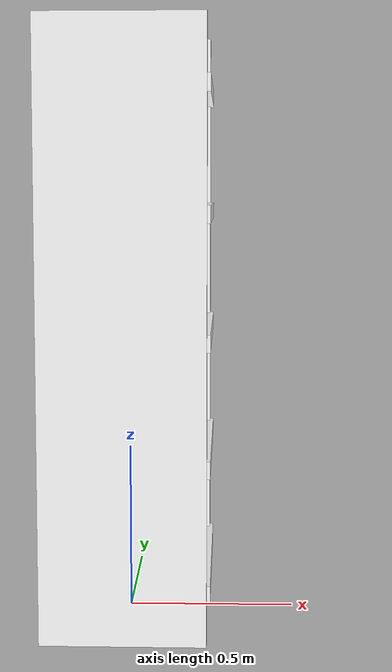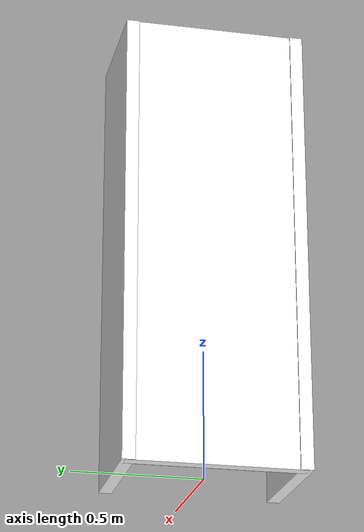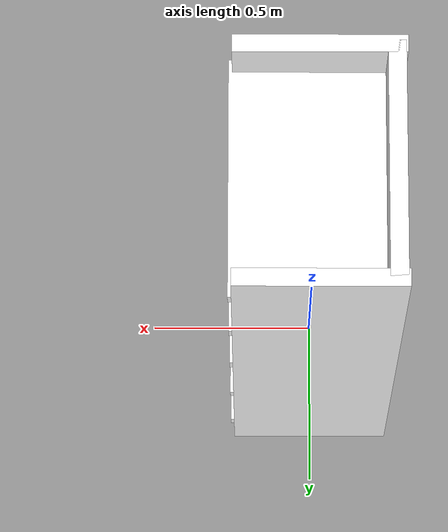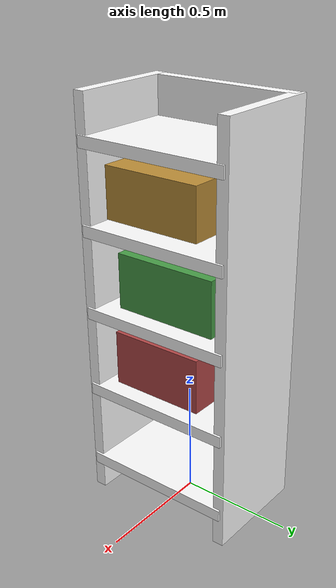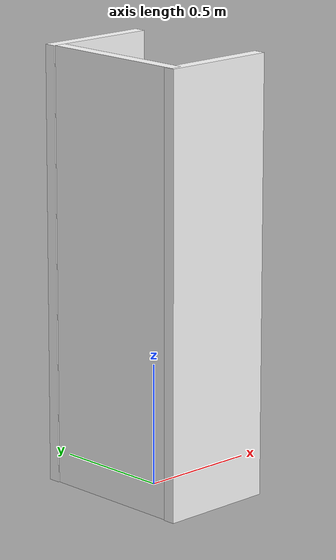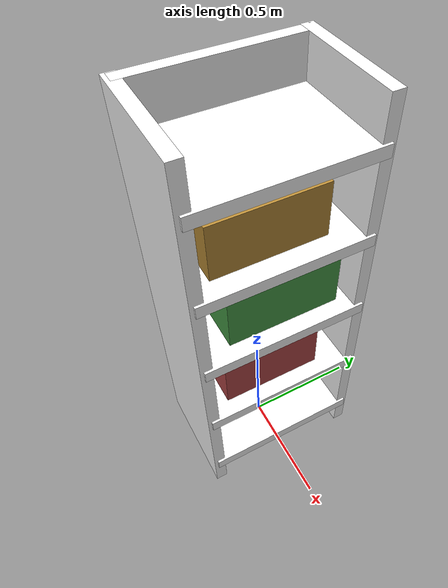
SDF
<?xml version="1.0"?>
<sdf version="1.9">
  <model name="bookshelf">
    <static>true</static>
    <link name="body">

      <collision name="left_side_collision">
        <pose>0 0.33 0.88 0 0 0</pose>
        <geometry><box><size>0.48 0.05 1.78</size></box></geometry>
      </collision>
      <collision name="right_side_collision">
        <pose>0 -0.33 0.88 0 0 0</pose>
        <geometry><box><size>0.48 0.05 1.78</size></box></geometry>
      </collision>
      <collision name="back_collision">
        <pose>-0.21 0 0.88 0 0 0</pose>
        <geometry><box><size>0.05 0.68 1.78</size></box></geometry>
      </collision>

      <collision name="bottom_shelf_collision">
        <pose>0.03 0 0.14 0 0 0</pose>
        <geometry><box><size>0.44 0.68 0.05</size></box></geometry>
      </collision>
      <collision name="mid1_shelf_collision">
        <pose>0.03 0 0.50 0 0 0</pose>
        <geometry><box><size>0.44 0.68 0.05</size></box></geometry>
      </collision>
      <collision name="mid2_shelf_collision">
        <pose>0.03 0 0.86 0 0 0</pose>
        <geometry><box><size>0.44 0.68 0.05</size></box></geometry>
      </collision>
      <collision name="mid3_shelf_collision">
        <pose>0.03 0 1.22 0 0 0</pose>
        <geometry><box><size>0.44 0.68 0.05</size></box></geometry>
      </collision>
      <collision name="top_shelf_collision">
        <pose>0.03 0 1.58 0 0 0</pose>
        <geometry><box><size>0.44 0.68 0.05</size></box></geometry>
      </collision>

      <collision name="books_2_collision">
        <pose>0.09 -0.03 0.66 0 0 0</pose>
        <geometry><box><size>0.20 0.42 0.24</size></box></geometry>
      </collision>
      <collision name="books_3_collision">
        <pose>0.09 0.02 1.02 0 0 0</pose>
        <geometry><box><size>0.20 0.46 0.24</size></box></geometry>
      </collision>
      <collision name="books_4_collision">
        <pose>0.09 -0.04 1.38 0 0 0</pose>
        <geometry><box><size>0.20 0.44 0.22</size></box></geometry>
      </collision>

      <visual name="left_side_visual">
        <pose>0 0.33 0.88 0 0 0</pose>
        <geometry><box><size>0.48 0.05 1.78</size></box></geometry>
        <material><ambient>1 1 1 1</ambient><diffuse>1 1 1 1</diffuse><specular>0.05 0.05 0.05 1</specular><pbr><metal><albedo_map>materials/textures/wood_albedo.jpg</albedo_map><normal_map>materials/textures/wood_normal.jpg</normal_map><roughness_map>materials/textures/wood_roughness.jpg</roughness_map><metalness>0.0</metalness></metal></pbr></material>
      </visual>
      <visual name="right_side_visual">
        <pose>0 -0.33 0.88 0 0 0</pose>
        <geometry><box><size>0.48 0.05 1.78</size></box></geometry>
        <material><ambient>1 1 1 1</ambient><diffuse>1 1 1 1</diffuse><specular>0.05 0.05 0.05 1</specular><pbr><metal><albedo_map>materials/textures/wood_albedo.jpg</albedo_map><normal_map>materials/textures/wood_normal.jpg</normal_map><roughness_map>materials/textures/wood_roughness.jpg</roughness_map><metalness>0.0</metalness></metal></pbr></material>
      </visual>
      <visual name="back_visual">
        <pose>-0.21 0 0.88 0 0 0</pose>
        <geometry><box><size>0.05 0.68 1.78</size></box></geometry>
        <material><ambient>1 1 1 1</ambient><diffuse>1 1 1 1</diffuse><specular>0.05 0.05 0.05 1</specular><pbr><metal><albedo_map>materials/textures/wood_albedo.jpg</albedo_map><normal_map>materials/textures/wood_normal.jpg</normal_map><roughness_map>materials/textures/wood_roughness.jpg</roughness_map><metalness>0.0</metalness></metal></pbr></material>
      </visual>

      <visual name="bottom_shelf_visual">
        <pose>0.03 0 0.14 0 0 0</pose>
        <geometry><box><size>0.44 0.68 0.05</size></box></geometry>
        <material><ambient>1 1 1 1</ambient><diffuse>1 1 1 1</diffuse><specular>0.05 0.05 0.05 1</specular><pbr><metal><albedo_map>materials/textures/wood_albedo.jpg</albedo_map><normal_map>materials/textures/wood_normal.jpg</normal_map><roughness_map>materials/textures/wood_roughness.jpg</roughness_map><metalness>0.0</metalness></metal></pbr></material>
      </visual>
      <visual name="mid1_shelf_visual">
        <pose>0.03 0 0.50 0 0 0</pose>
        <geometry><box><size>0.44 0.68 0.05</size></box></geometry>
        <material><ambient>1 1 1 1</ambient><diffuse>1 1 1 1</diffuse><specular>0.05 0.05 0.05 1</specular><pbr><metal><albedo_map>materials/textures/wood_albedo.jpg</albedo_map><normal_map>materials/textures/wood_normal.jpg</normal_map><roughness_map>materials/textures/wood_roughness.jpg</roughness_map><metalness>0.0</metalness></metal></pbr></material>
      </visual>
      <visual name="mid2_shelf_visual">
        <pose>0.03 0 0.86 0 0 0</pose>
        <geometry><box><size>0.44 0.68 0.05</size></box></geometry>
        <material><ambient>1 1 1 1</ambient><diffuse>1 1 1 1</diffuse><specular>0.05 0.05 0.05 1</specular><pbr><metal><albedo_map>materials/textures/wood_albedo.jpg</albedo_map><normal_map>materials/textures/wood_normal.jpg</normal_map><roughness_map>materials/textures/wood_roughness.jpg</roughness_map><metalness>0.0</metalness></metal></pbr></material>
      </visual>
      <visual name="mid3_shelf_visual">
        <pose>0.03 0 1.22 0 0 0</pose>
        <geometry><box><size>0.44 0.68 0.05</size></box></geometry>
        <material><ambient>1 1 1 1</ambient><diffuse>1 1 1 1</diffuse><specular>0.05 0.05 0.05 1</specular><pbr><metal><albedo_map>materials/textures/wood_albedo.jpg</albedo_map><normal_map>materials/textures/wood_normal.jpg</normal_map><roughness_map>materials/textures/wood_roughness.jpg</roughness_map><metalness>0.0</metalness></metal></pbr></material>
      </visual>
      <visual name="top_shelf_visual">
        <pose>0.03 0 1.58 0 0 0</pose>
        <geometry><box><size>0.44 0.68 0.05</size></box></geometry>
        <material><ambient>1 1 1 1</ambient><diffuse>1 1 1 1</diffuse><specular>0.05 0.05 0.05 1</specular><pbr><metal><albedo_map>materials/textures/wood_albedo.jpg</albedo_map><normal_map>materials/textures/wood_normal.jpg</normal_map><roughness_map>materials/textures/wood_roughness.jpg</roughness_map><metalness>0.0</metalness></metal></pbr></material>
      </visual>

      <!-- simple books -->
      <visual name="books_2">
        <pose>0.09 -0.03 0.66 0 0 0</pose>
        <geometry><box><size>0.20 0.42 0.24</size></box></geometry>
        <material><ambient>0.45 0.18 0.18 1</ambient><diffuse>0.70 0.28 0.28 1</diffuse></material>
      </visual>
      <visual name="books_3">
        <pose>0.09 0.02 1.02 0 0 0</pose>
        <geometry><box><size>0.20 0.46 0.24</size></box></geometry>
        <material><ambient>0.18 0.40 0.18 1</ambient><diffuse>0.28 0.62 0.28 1</diffuse></material>
      </visual>
      <visual name="books_4">
        <pose>0.09 -0.04 1.38 0 0 0</pose>
        <geometry><box><size>0.20 0.44 0.22</size></box></geometry>
        <material><ambient>0.48 0.36 0.14 1</ambient><diffuse>0.74 0.56 0.22 1</diffuse></material>
      </visual>

    </link>
  </model>
</sdf>
